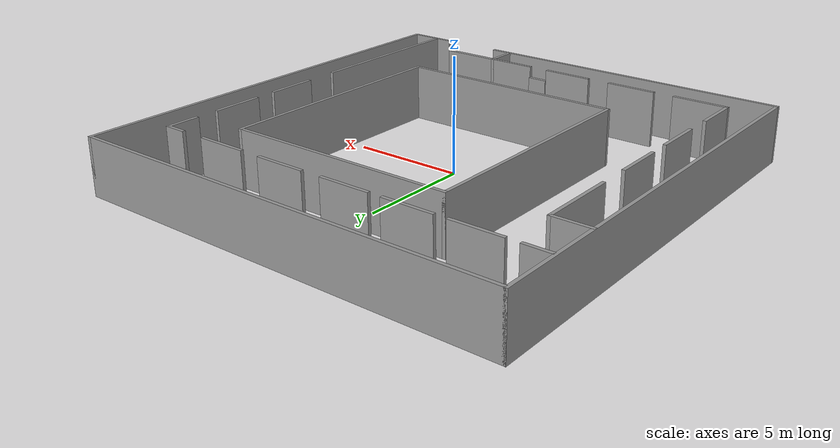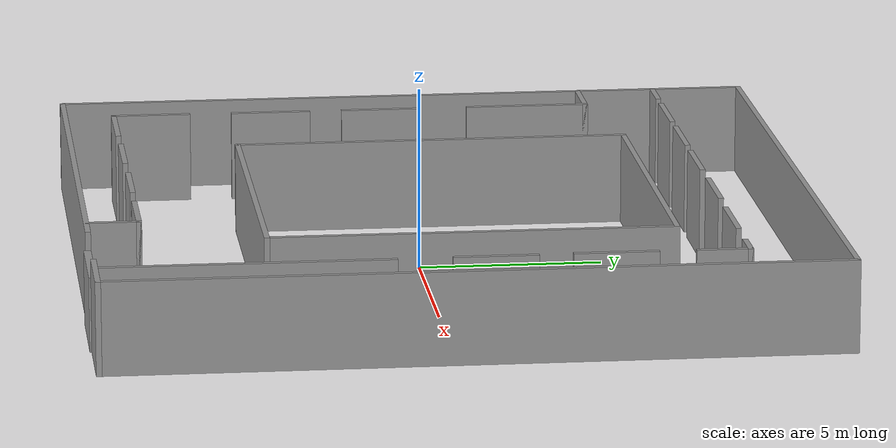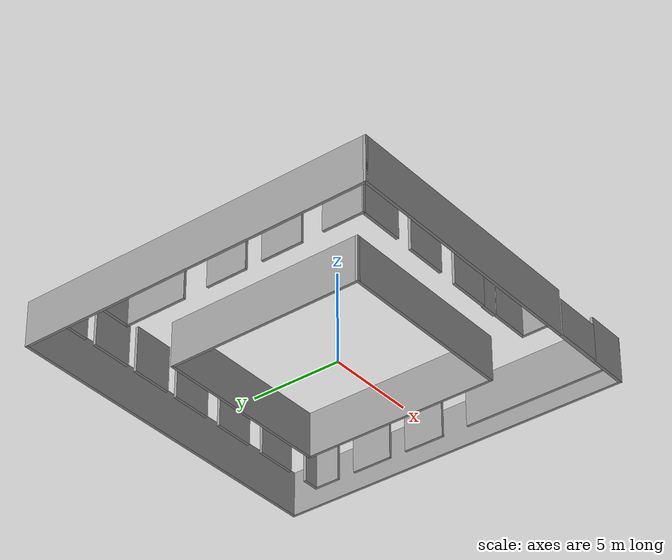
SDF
<?xml version='1.0'?>
<sdf version='1.7'>
  <model name='trail_environment'>
    <pose>-0.125864 0.558833 0 0 -0 0</pose>
    <link name='Door_2'>
      <collision name='Door_2_Collision'>
        <geometry>
          <box>
            <size>2.72505 0.2 2</size>
          </box>
        </geometry>
        <pose>0 0 1 0 -0 0</pose>
      </collision>
      <visual name='Door_2_Visual'>
        <pose>0 0 1 0 -0 0</pose>
        <geometry>
          <box>
            <size>2.72505 0.2 2</size>
          </box>
        </geometry>
        <material>
          <script>
            <uri>file://media/materials/scripts/gazebo.material</uri>
            <name>Gazebo/Grey</name>
          </script>
        </material>
      </visual>
      <pose>6.12222 -9.824 0 0 -0 0</pose>
    </link>
    <link name='Door_3'>
      <collision name='Door_3_Collision'>
        <geometry>
          <box>
            <size>0.9 0.17 2</size>
          </box>
        </geometry>
        <pose>0 0 1 0 -0 0</pose>
      </collision>
      <visual name='Door_3_Visual'>
        <pose>0 0 1 0 -0 0</pose>
        <geometry>
          <box>
            <size>0.9 0.17 2</size>
          </box>
        </geometry>
        <material>
          <script>
            <uri>file://media/materials/scripts/gazebo.material</uri>
            <name>Gazebo/Grey</name>
          </script>
        </material>
      </visual>
      <pose>1.17929 -8.34902 0 0 -0 0</pose>
    </link>
    <link name='Wall_11'>
      <collision name='Wall_11_Collision'>
        <geometry>
          <box>
            <size>19.75 0.15 2.5</size>
          </box>
        </geometry>
        <pose>0 0 1.25 0 -0 0</pose>
      </collision>
      <visual name='Wall_11_Visual'>
        <pose>0 0 1.25 0 -0 0</pose>
        <geometry>
          <box>
            <size>19.75 0.15 2.5</size>
          </box>
        </geometry>
        <material>
          <script>
            <uri>file://media/materials/scripts/gazebo.material</uri>
            <name>Gazebo/Grey</name>
          </script>
          <ambient>1 1 1 1</ambient>
        </material>
        <meta>
          <layer>0</layer>
        </meta>
      </visual>
      <pose>9.675 0 0 0 -0 -1.5708</pose>
    </link>
    <link name='Wall_12'>
      <collision name='Wall_12_Collision'>
        <geometry>
          <box>
            <size>2.25 0.15 2.5</size>
          </box>
        </geometry>
        <pose>0 0 1.25 0 -0 0</pose>
      </collision>
      <visual name='Wall_12_Visual'>
        <pose>0 0 1.25 0 -0 0</pose>
        <geometry>
          <box>
            <size>2.25 0.15 2.5</size>
          </box>
        </geometry>
        <material>
          <script>
            <uri>file://media/materials/scripts/gazebo.material</uri>
            <name>Gazebo/Grey</name>
          </script>
          <ambient>1 1 1 1</ambient>
        </material>
        <meta>
          <layer>0</layer>
        </meta>
      </visual>
      <pose>8.625 -9.8 0 0 -0 3.14159</pose>
    </link>
    <link name='Wall_14'>
      <collision name='Wall_14_Collision'>
        <geometry>
          <box>
            <size>10.25 0.15 2.5</size>
          </box>
        </geometry>
        <pose>0 0 1.25 0 -0 0</pose>
      </collision>
      <visual name='Wall_14_Visual'>
        <pose>0 0 1.25 0 -0 0</pose>
        <geometry>
          <box>
            <size>10.25 0.15 2.5</size>
          </box>
        </geometry>
        <material>
          <script>
            <uri>file://media/materials/scripts/gazebo.material</uri>
            <name>Gazebo/Grey</name>
          </script>
          <ambient>1 1 1 1</ambient>
        </material>
        <meta>
          <layer>0</layer>
        </meta>
      </visual>
      <pose>0.753468 -5.17376 0 0 -0 3.14159</pose>
    </link>
    <link name='Wall_15'>
      <collision name='Wall_15_Collision'>
        <geometry>
          <box>
            <size>11 0.15 2.5</size>
          </box>
        </geometry>
        <pose>0 0 1.25 0 -0 0</pose>
      </collision>
      <visual name='Wall_15_Visual'>
        <pose>0 0 1.25 0 -0 0</pose>
        <geometry>
          <box>
            <size>11 0.15 2.5</size>
          </box>
        </geometry>
        <material>
          <script>
            <uri>file://media/materials/scripts/gazebo.material</uri>
            <name>Gazebo/Grey</name>
          </script>
          <ambient>1 1 1 1</ambient>
        </material>
        <meta>
          <layer>0</layer>
        </meta>
      </visual>
      <pose>-4.29653 0.251241 0 0 -0 1.5708</pose>
    </link>
    <link name='Wall_16'>
      <collision name='Wall_16_Collision'>
        <geometry>
          <box>
            <size>10.25 0.15 2.5</size>
          </box>
        </geometry>
        <pose>0 0 1.25 0 -0 0</pose>
      </collision>
      <visual name='Wall_16_Visual'>
        <pose>0 0 1.25 0 -0 0</pose>
        <geometry>
          <box>
            <size>10.25 0.15 2.5</size>
          </box>
        </geometry>
        <material>
          <script>
            <uri>file://media/materials/scripts/gazebo.material</uri>
            <name>Gazebo/Grey</name>
          </script>
          <ambient>1 1 1 1</ambient>
        </material>
        <meta>
          <layer>0</layer>
        </meta>
      </visual>
      <pose>0.753468 5.67624 0 0 -0 0</pose>
    </link>
    <link name='Wall_17'>
      <collision name='Wall_17_Collision'>
        <geometry>
          <box>
            <size>11 0.15 2.5</size>
          </box>
        </geometry>
        <pose>0 0 1.25 0 -0 0</pose>
      </collision>
      <visual name='Wall_17_Visual'>
        <pose>0 0 1.25 0 -0 0</pose>
        <geometry>
          <box>
            <size>11 0.15 2.5</size>
          </box>
        </geometry>
        <material>
          <script>
            <uri>file://media/materials/scripts/gazebo.material</uri>
            <name>Gazebo/Grey</name>
          </script>
          <ambient>1 1 1 1</ambient>
        </material>
        <meta>
          <layer>0</layer>
        </meta>
      </visual>
      <pose>5.80347 0.251241 0 0 -0 -1.5708</pose>
    </link>
    <link name='Wall_19'>
      <collision name='Wall_19_Collision'>
        <geometry>
          <box>
            <size>1.25 0.15 2.5</size>
          </box>
        </geometry>
        <pose>0 0 1.25 0 -0 0</pose>
      </collision>
      <visual name='Wall_19_Visual'>
        <pose>0 0 1.25 0 -0 0</pose>
        <geometry>
          <box>
            <size>1.25 0.15 2.5</size>
          </box>
        </geometry>
        <material>
          <script>
            <uri>file://media/materials/scripts/gazebo.material</uri>
            <name>Gazebo/Grey</name>
          </script>
          <ambient>1 1 1 1</ambient>
        </material>
        <meta>
          <layer>0</layer>
        </meta>
      </visual>
      <pose>-9.06011 7.28656 0 0 -0 0</pose>
    </link>
    <link name='Wall_21'>
      <collision name='Wall_21_Collision'>
        <geometry>
          <box>
            <size>2.25 0.15 2.5</size>
          </box>
        </geometry>
        <pose>0 0 1.25 0 -0 0</pose>
      </collision>
      <visual name='Wall_21_Visual'>
        <pose>0 0 1.25 0 -0 0</pose>
        <geometry>
          <box>
            <size>2.25 0.15 2.5</size>
          </box>
        </geometry>
        <material>
          <script>
            <uri>file://media/materials/scripts/gazebo.material</uri>
            <name>Gazebo/Grey</name>
          </script>
          <ambient>1 1 1 1</ambient>
        </material>
        <meta>
          <layer>0</layer>
        </meta>
      </visual>
      <pose>-6.76298 7.27844 0 0 -0 0</pose>
    </link>
    <link name='Wall_27'>
      <collision name='Wall_27_Collision'>
        <geometry>
          <box>
            <size>2.25 0.15 2.5</size>
          </box>
        </geometry>
        <pose>0 0 1.25 0 -0 0</pose>
      </collision>
      <visual name='Wall_27_Visual'>
        <pose>0 0 1.25 0 -0 0</pose>
        <geometry>
          <box>
            <size>2.25 0.15 2.5</size>
          </box>
        </geometry>
        <material>
          <script>
            <uri>file://media/materials/scripts/gazebo.material</uri>
            <name>Gazebo/Grey</name>
          </script>
          <ambient>1 1 1 1</ambient>
        </material>
        <meta>
          <layer>0</layer>
        </meta>
      </visual>
      <pose>-3.99417 7.28021 0 0 -0 0</pose>
    </link>
    <link name='Wall_29'>
      <collision name='Wall_29_Collision'>
        <geometry>
          <box>
            <size>2.25 0.15 2.5</size>
          </box>
        </geometry>
        <pose>0 0 1.25 0 -0 0</pose>
      </collision>
      <visual name='Wall_29_Visual'>
        <pose>0 0 1.25 0 -0 0</pose>
        <geometry>
          <box>
            <size>2.25 0.15 2.5</size>
          </box>
        </geometry>
        <material>
          <script>
            <uri>file://media/materials/scripts/gazebo.material</uri>
            <name>Gazebo/Grey</name>
          </script>
          <ambient>1 1 1 1</ambient>
        </material>
        <meta>
          <layer>0</layer>
        </meta>
      </visual>
      <pose>-1.18414 7.27017 0 0 -0 0</pose>
    </link>
    <link name='Wall_31'>
      <collision name='Wall_31_Collision'>
        <geometry>
          <box>
            <size>2.25 0.15 2.5</size>
          </box>
        </geometry>
        <pose>0 0 1.25 0 -0 0</pose>
      </collision>
      <visual name='Wall_31_Visual'>
        <pose>0 0 1.25 0 -0 0</pose>
        <geometry>
          <box>
            <size>2.25 0.15 2.5</size>
          </box>
        </geometry>
        <material>
          <script>
            <uri>file://media/materials/scripts/gazebo.material</uri>
            <name>Gazebo/Grey</name>
          </script>
          <ambient>1 1 1 1</ambient>
        </material>
        <meta>
          <layer>0</layer>
        </meta>
      </visual>
      <pose>1.94586 7.2798 0 0 -0 0</pose>
    </link>
    <link name='Wall_34'>
      <collision name='Wall_34_Collision'>
        <geometry>
          <box>
            <size>2.25 0.15 2.5</size>
          </box>
        </geometry>
        <pose>0 0 1.25 0 -0 0</pose>
      </collision>
      <visual name='Wall_34_Visual'>
        <pose>0 0 1.25 0 -0 0</pose>
        <geometry>
          <box>
            <size>2.25 0.15 2.5</size>
          </box>
        </geometry>
        <material>
          <script>
            <uri>file://media/materials/scripts/gazebo.material</uri>
            <name>Gazebo/Grey</name>
          </script>
          <ambient>1 1 1 1</ambient>
        </material>
        <meta>
          <layer>0</layer>
        </meta>
      </visual>
      <pose>5.10928 7.24939 0 0 -0 0</pose>
    </link>
    <link name='Wall_38'>
      <collision name='Wall_38_Collision'>
        <geometry>
          <box>
            <size>1 0.15 2.5</size>
          </box>
        </geometry>
        <pose>0 0 1.25 0 -0 0</pose>
      </collision>
      <visual name='Wall_38_Visual'>
        <pose>0 0 1.25 0 -0 0</pose>
        <geometry>
          <box>
            <size>1 0.15 2.5</size>
          </box>
        </geometry>
        <material>
          <script>
            <uri>file://media/materials/scripts/gazebo.material</uri>
            <name>Gazebo/Grey</name>
          </script>
          <ambient>1 1 1 1</ambient>
        </material>
        <meta>
          <layer>0</layer>
        </meta>
      </visual>
      <pose>7.83978 7.23397 0 0 -0 0</pose>
    </link>
    <link name='Wall_39'>
      <collision name='Wall_39_Collision'>
        <geometry>
          <box>
            <size>1.5 0.15 2.5</size>
          </box>
        </geometry>
        <pose>0 0 1.25 0 -0 0</pose>
      </collision>
      <visual name='Wall_39_Visual'>
        <pose>0 0 1.25 0 -0 0</pose>
        <geometry>
          <box>
            <size>1.5 0.15 2.5</size>
          </box>
        </geometry>
        <material>
          <script>
            <uri>file://media/materials/scripts/gazebo.material</uri>
            <name>Gazebo/Grey</name>
          </script>
          <ambient>1 1 1 1</ambient>
        </material>
        <meta>
          <layer>0</layer>
        </meta>
      </visual>
      <pose>8.26478 6.55897 0 0 -0 -1.5708</pose>
    </link>
    <link name='Wall_41'>
      <collision name='Wall_41_Collision'>
        <geometry>
          <box>
            <size>2.25 0.15 2.5</size>
          </box>
        </geometry>
        <pose>0 0 1.25 0 -0 0</pose>
      </collision>
      <visual name='Wall_41_Visual'>
        <pose>0 0 1.25 0 -0 0</pose>
        <geometry>
          <box>
            <size>2.25 0.15 2.5</size>
          </box>
        </geometry>
        <material>
          <script>
            <uri>file://media/materials/scripts/gazebo.material</uri>
            <name>Gazebo/Grey</name>
          </script>
          <ambient>1 1 1 1</ambient>
        </material>
        <meta>
          <layer>0</layer>
        </meta>
      </visual>
      <pose>8.26629 3.71787 0 0 -0 -1.5708</pose>
    </link>
    <link name='Wall_43'>
      <collision name='Wall_43_Collision'>
        <geometry>
          <box>
            <size>2.25 0.15 2.5</size>
          </box>
        </geometry>
        <pose>0 0 1.25 0 -0 0</pose>
      </collision>
      <visual name='Wall_43_Visual'>
        <pose>0 0 1.25 0 -0 0</pose>
        <geometry>
          <box>
            <size>2.25 0.15 2.5</size>
          </box>
        </geometry>
        <material>
          <script>
            <uri>file://media/materials/scripts/gazebo.material</uri>
            <name>Gazebo/Grey</name>
          </script>
          <ambient>1 1 1 1</ambient>
        </material>
        <meta>
          <layer>0</layer>
        </meta>
      </visual>
      <pose>8.29576 0.569655 0 0 -0 -1.5708</pose>
    </link>
    <link name='Wall_47'>
      <collision name='Wall_47_Collision'>
        <geometry>
          <box>
            <size>7.75 0.15 2.5</size>
          </box>
        </geometry>
        <pose>0 0 1.25 0 -0 0</pose>
      </collision>
      <visual name='Wall_47_Visual'>
        <pose>0 0 1.25 0 -0 0</pose>
        <geometry>
          <box>
            <size>7.75 0.15 2.5</size>
          </box>
        </geometry>
        <material>
          <script>
            <uri>file://media/materials/scripts/gazebo.material</uri>
            <name>Gazebo/Grey</name>
          </script>
          <ambient>1 1 1 1</ambient>
        </material>
        <meta>
          <layer>0</layer>
        </meta>
      </visual>
      <pose>8.32714 -5.86374 0 0 -0 -1.5708</pose>
    </link>
    <link name='Wall_49'>
      <collision name='Wall_49_Collision'>
        <geometry>
          <box>
            <size>1.5 0.15 2.5</size>
          </box>
        </geometry>
        <pose>0 0 1.25 0 -0 0</pose>
      </collision>
      <visual name='Wall_49_Visual'>
        <pose>0 0 1.25 0 -0 0</pose>
        <geometry>
          <box>
            <size>1.5 0.15 2.5</size>
          </box>
        </geometry>
        <material>
          <script>
            <uri>file://media/materials/scripts/gazebo.material</uri>
            <name>Gazebo/Grey</name>
          </script>
          <ambient>1 1 1 1</ambient>
        </material>
        <meta>
          <layer>0</layer>
        </meta>
      </visual>
      <pose>3.78486 -9.07884 0 0 -0 1.5708</pose>
    </link>
    <link name='Wall_5'>
      <collision name='Wall_5_Collision'>
        <geometry>
          <box>
            <size>14.5 0.15 2.5</size>
          </box>
        </geometry>
        <pose>0 0 1.25 0 -0 0</pose>
      </collision>
      <visual name='Wall_5_Visual'>
        <pose>0 0 1.25 0 -0 0</pose>
        <geometry>
          <box>
            <size>14.5 0.15 2.5</size>
          </box>
        </geometry>
        <material>
          <script>
            <uri>file://media/materials/scripts/gazebo.material</uri>
            <name>Gazebo/Grey</name>
          </script>
          <ambient>1 1 1 1</ambient>
        </material>
        <meta>
          <layer>0</layer>
        </meta>
      </visual>
      <pose>-2.5 -9.8 0 0 -0 0</pose>
    </link>
    <link name='Wall_50'>
      <collision name='Wall_50_Collision'>
        <geometry>
          <box>
            <size>2.25 0.15 2.5</size>
          </box>
        </geometry>
        <pose>0 0 1.25 0 -0 0</pose>
      </collision>
      <visual name='Wall_50_Visual'>
        <pose>0 0 1.25 0 -0 0</pose>
        <geometry>
          <box>
            <size>2.25 0.15 2.5</size>
          </box>
        </geometry>
        <material>
          <script>
            <uri>file://media/materials/scripts/gazebo.material</uri>
            <name>Gazebo/Grey</name>
          </script>
          <ambient>1 1 1 1</ambient>
        </material>
        <meta>
          <layer>0</layer>
        </meta>
      </visual>
      <pose>2.73486 -8.40384 0 0 -0 3.14159</pose>
    </link>
    <link name='Wall_52'>
      <collision name='Wall_52_Collision'>
        <geometry>
          <box>
            <size>2.25 0.15 2.5</size>
          </box>
        </geometry>
        <pose>0 0 1.25 0 -0 0</pose>
      </collision>
      <visual name='Wall_52_Visual'>
        <pose>0 0 1.25 0 -0 0</pose>
        <geometry>
          <box>
            <size>2.25 0.15 2.5</size>
          </box>
        </geometry>
        <material>
          <script>
            <uri>file://media/materials/scripts/gazebo.material</uri>
            <name>Gazebo/Grey</name>
          </script>
          <ambient>1 1 1 1</ambient>
        </material>
        <meta>
          <layer>0</layer>
        </meta>
      </visual>
      <pose>-0.395862 -8.38961 0 0 -0 3.14159</pose>
    </link>
    <link name='Wall_54'>
      <collision name='Wall_54_Collision'>
        <geometry>
          <box>
            <size>2.25 0.15 2.5</size>
          </box>
        </geometry>
        <pose>0 0 1.25 0 -0 0</pose>
      </collision>
      <visual name='Wall_54_Visual'>
        <pose>0 0 1.25 0 -0 0</pose>
        <geometry>
          <box>
            <size>2.25 0.15 2.5</size>
          </box>
        </geometry>
        <material>
          <script>
            <uri>file://media/materials/scripts/gazebo.material</uri>
            <name>Gazebo/Grey</name>
          </script>
          <ambient>1 1 1 1</ambient>
        </material>
        <meta>
          <layer>0</layer>
        </meta>
      </visual>
      <pose>-3.63152 -8.4071 0 0 -0 3.14159</pose>
    </link>
    <link name='Wall_56'>
      <collision name='Wall_56_Collision'>
        <geometry>
          <box>
            <size>2.5 0.15 2.5</size>
          </box>
        </geometry>
        <pose>0 0 1.25 0 -0 0</pose>
      </collision>
      <visual name='Wall_56_Visual'>
        <pose>0 0 1.25 0 -0 0</pose>
        <geometry>
          <box>
            <size>2.5 0.15 2.5</size>
          </box>
        </geometry>
        <material>
          <script>
            <uri>file://media/materials/scripts/gazebo.material</uri>
            <name>Gazebo/Grey</name>
          </script>
          <ambient>1 1 1 1</ambient>
        </material>
        <meta>
          <layer>0</layer>
        </meta>
      </visual>
      <pose>-6.90473 -8.4246 0 0 -0 3.14159</pose>
    </link>
    <link name='Wall_57'>
      <collision name='Wall_57_Collision'>
        <geometry>
          <box>
            <size>2.25 0.15 2.5</size>
          </box>
        </geometry>
        <pose>0 0 1.25 0 -0 0</pose>
      </collision>
      <visual name='Wall_57_Visual'>
        <pose>0 0 1.25 0 -0 0</pose>
        <geometry>
          <box>
            <size>2.25 0.15 2.5</size>
          </box>
        </geometry>
        <material>
          <script>
            <uri>file://media/materials/scripts/gazebo.material</uri>
            <name>Gazebo/Grey</name>
          </script>
          <ambient>1 1 1 1</ambient>
        </material>
        <meta>
          <layer>0</layer>
        </meta>
      </visual>
      <pose>-8.07973 -7.3746 0 0 -0 1.5708</pose>
    </link>
    <link name='Wall_59'>
      <collision name='Wall_59_Collision'>
        <geometry>
          <box>
            <size>2.25 0.15 2.5</size>
          </box>
        </geometry>
        <pose>0 0 1.25 0 -0 0</pose>
      </collision>
      <visual name='Wall_59_Visual'>
        <pose>0 0 1.25 0 -0 0</pose>
        <geometry>
          <box>
            <size>2.25 0.15 2.5</size>
          </box>
        </geometry>
        <material>
          <script>
            <uri>file://media/materials/scripts/gazebo.material</uri>
            <name>Gazebo/Grey</name>
          </script>
          <ambient>1 1 1 1</ambient>
        </material>
        <meta>
          <layer>0</layer>
        </meta>
      </visual>
      <pose>-8.05149 -3.95151 0 0 -0 1.5708</pose>
    </link>
    <link name='Wall_61'>
      <collision name='Wall_61_Collision'>
        <geometry>
          <box>
            <size>2.25 0.15 2.5</size>
          </box>
        </geometry>
        <pose>0 0 1.25 0 -0 0</pose>
      </collision>
      <visual name='Wall_61_Visual'>
        <pose>0 0 1.25 0 -0 0</pose>
        <geometry>
          <box>
            <size>2.25 0.15 2.5</size>
          </box>
        </geometry>
        <material>
          <script>
            <uri>file://media/materials/scripts/gazebo.material</uri>
            <name>Gazebo/Grey</name>
          </script>
          <ambient>1 1 1 1</ambient>
        </material>
        <meta>
          <layer>0</layer>
        </meta>
      </visual>
      <pose>-8.05746 -0.796847 0 0 -0 1.5708</pose>
    </link>
    <link name='Wall_63'>
      <collision name='Wall_63_Collision'>
        <geometry>
          <box>
            <size>3.5 0.15 2.5</size>
          </box>
        </geometry>
        <pose>0 0 1.25 0 -0 0</pose>
      </collision>
      <visual name='Wall_63_Visual'>
        <pose>0 0 1.25 0 -0 0</pose>
        <geometry>
          <box>
            <size>3.5 0.15 2.5</size>
          </box>
        </geometry>
        <material>
          <script>
            <uri>file://media/materials/scripts/gazebo.material</uri>
            <name>Gazebo/Grey</name>
          </script>
          <ambient>1 1 1 1</ambient>
        </material>
        <meta>
          <layer>0</layer>
        </meta>
      </visual>
      <pose>-8.05546 3.42314 0 0 -0 1.5708</pose>
    </link>
    <link name='Wall_66'>
      <collision name='Wall_66_Collision'>
        <geometry>
          <box>
            <size>1.75 0.15 2.5</size>
          </box>
        </geometry>
        <pose>0 0 1.25 0 -0 0</pose>
      </collision>
      <visual name='Wall_66_Visual'>
        <pose>0 0 1.25 0 -0 0</pose>
        <geometry>
          <box>
            <size>1.75 0.15 2.5</size>
          </box>
        </geometry>
        <material>
          <script>
            <uri>file://media/materials/scripts/gazebo.material</uri>
            <name>Gazebo/Grey</name>
          </script>
          <ambient>1 1 1 1</ambient>
        </material>
        <meta>
          <layer>0</layer>
        </meta>
      </visual>
      <pose>-8.85547 5.09814 0 0 -0 3.14159</pose>
    </link>
    <link name='Wall_7'>
      <collision name='Wall_7_Collision'>
        <geometry>
          <box>
            <size>19.75 0.15 2.5</size>
          </box>
        </geometry>
        <pose>0 0 1.25 0 -0 0</pose>
      </collision>
      <visual name='Wall_7_Visual'>
        <pose>0 0 1.25 0 -0 0</pose>
        <geometry>
          <box>
            <size>19.75 0.15 2.5</size>
          </box>
        </geometry>
        <material>
          <script>
            <uri>file://media/materials/scripts/gazebo.material</uri>
            <name>Gazebo/Grey</name>
          </script>
          <ambient>1 1 1 1</ambient>
        </material>
        <meta>
          <layer>0</layer>
        </meta>
      </visual>
      <pose>-9.675 0 0 0 -0 1.5708</pose>
    </link>
    <link name='Wall_8'>
      <collision name='Wall_8_Collision'>
        <geometry>
          <box>
            <size>19.5 0.15 2.5</size>
          </box>
        </geometry>
        <pose>0 0 1.25 0 -0 0</pose>
      </collision>
      <visual name='Wall_8_Visual'>
        <pose>0 0 1.25 0 -0 0</pose>
        <geometry>
          <box>
            <size>19.5 0.15 2.5</size>
          </box>
        </geometry>
        <material>
          <script>
            <uri>file://media/materials/scripts/gazebo.material</uri>
            <name>Gazebo/Grey</name>
          </script>
          <ambient>1 1 1 1</ambient>
        </material>
        <meta>
          <layer>0</layer>
        </meta>
      </visual>
      <pose>0 9.8 0 0 -0 0</pose>
    </link>
    <static>1</static>
  </model>
</sdf>
